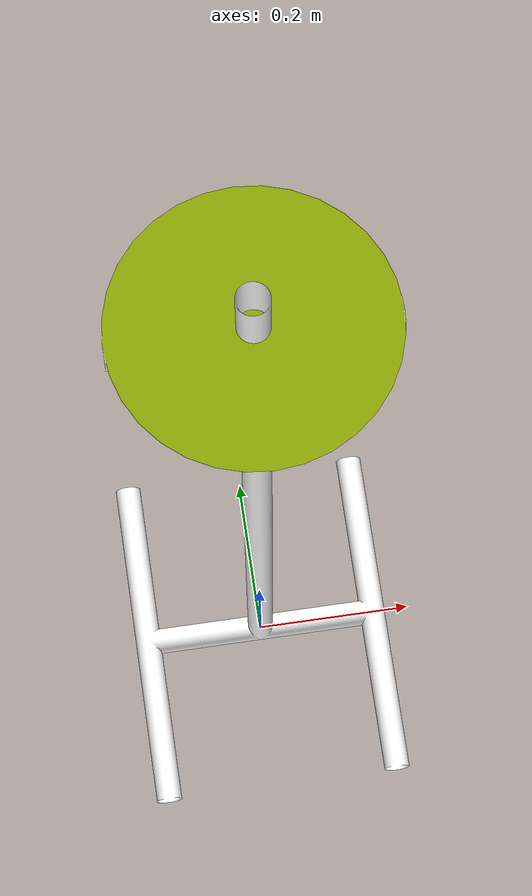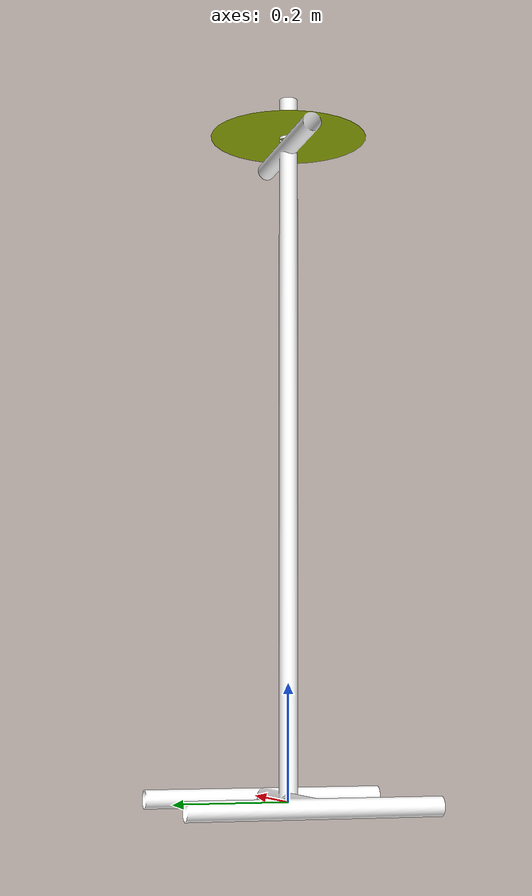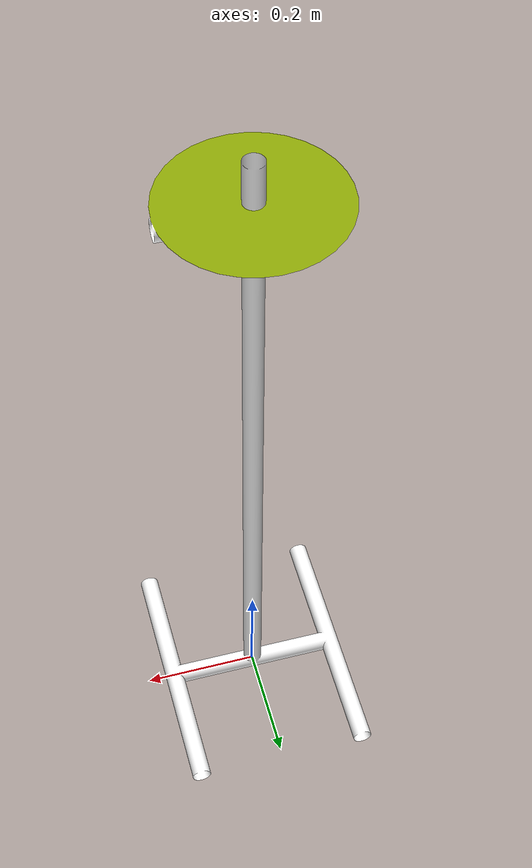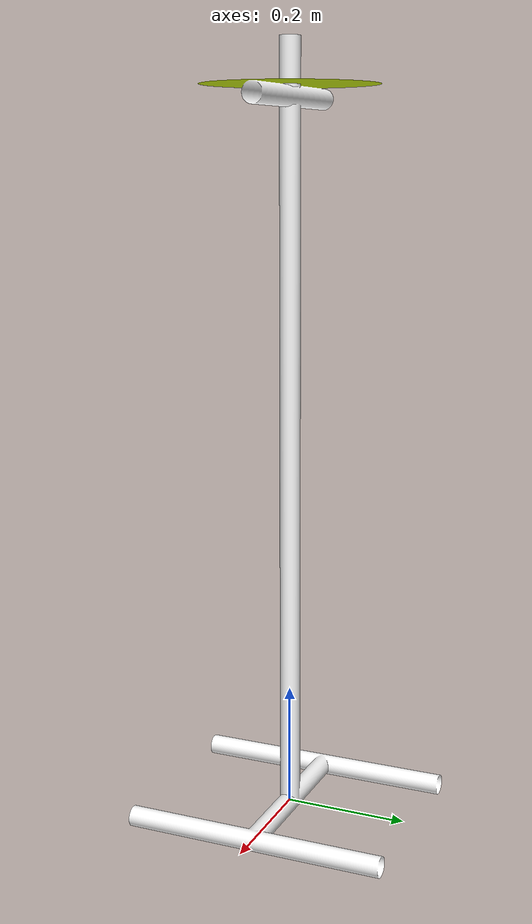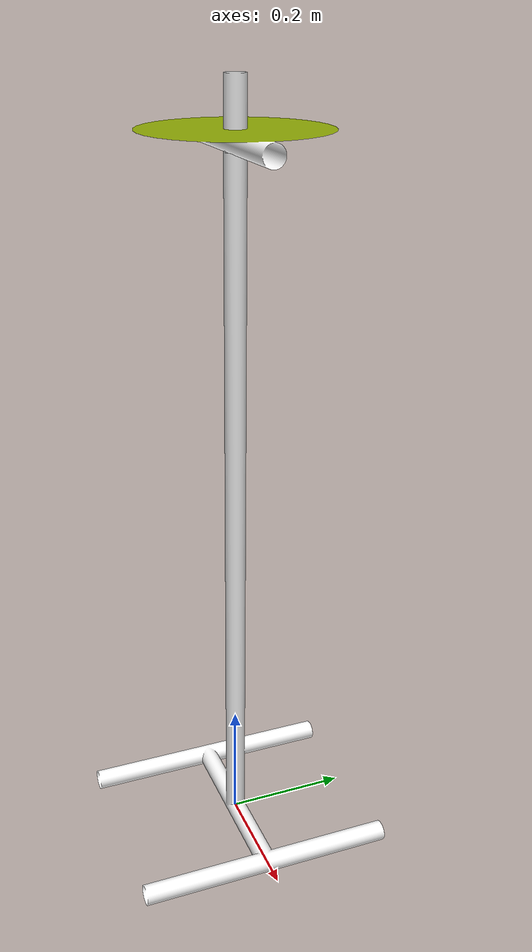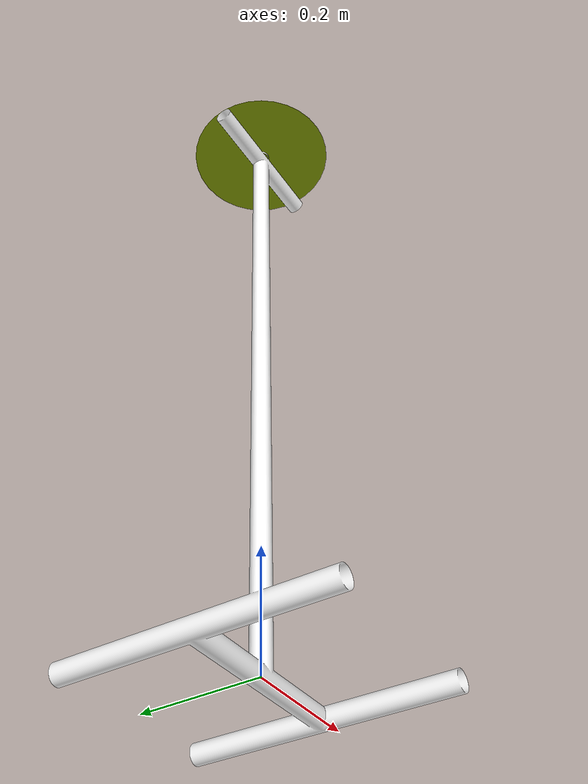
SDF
<?xml version="1.0" ?>
<sdf version="1.4">
  <model name="crucifix_tower">
    <static>true</static>
    <link name="link">
      <pose>0 0 0 0 0 0</pose>
      <must_be_base_link>1</must_be_base_link>
      <collision name="collision">
        <geometry>
          <mesh>
            <uri>model://crucifix_tower/meshes/crucifix_tower.dae</uri>
          </mesh>
        </geometry>
      </collision>
      <visual name="visual">
        <cast_shadows>false</cast_shadows>
        <geometry>
          <mesh>
            <uri>model://crucifix_tower/meshes/crucifix_tower.dae</uri>
          </mesh>
        </geometry>
      </visual>
    </link>
  </model>
</sdf>
